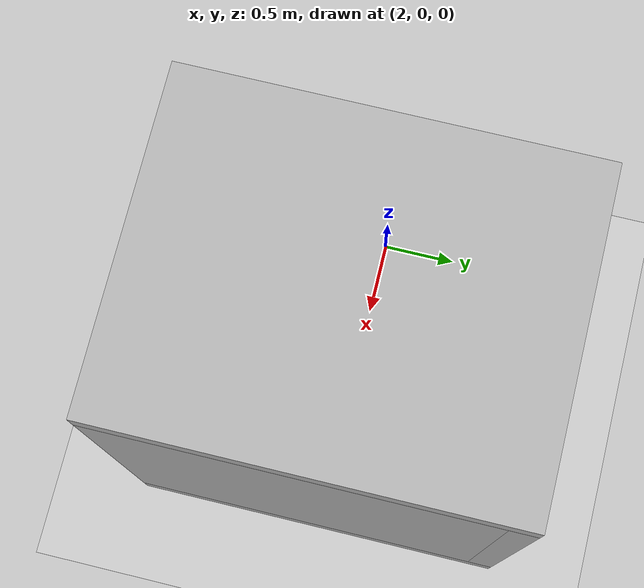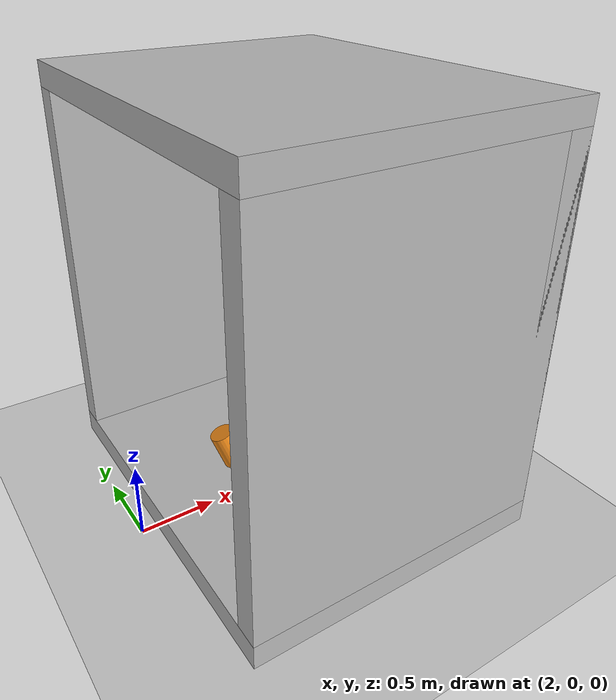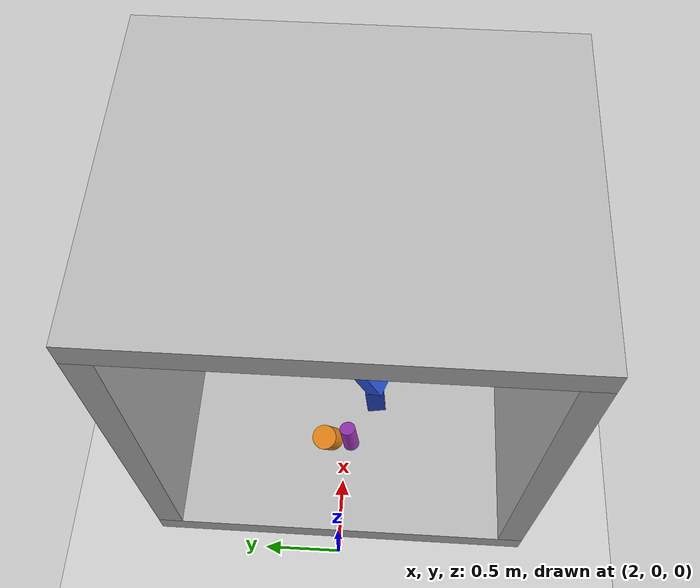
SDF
<sdf version="1.6">
 <world name="default">
  <light name="sun" type="directional">
   <pose>0 0 10 0 -0 0</pose>
   <diffuse>0.8 0.8 0.8 1</diffuse>
   <specular>0.1 0.1 0.1 1</specular>
   <attenuation>
    <range>1000</range>
    <constant>0.9</constant>
    <linear>0.01</linear>
    <quadratic>0.001</quadratic>
   </attenuation>
   <direction>-0.5 0.5 -1</direction>
  </light>
  <model name="ground_plane">
   <static>1</static>
   <link name="link">
    <collision name="collision">
     <geometry><plane><normal>0 0 1</normal><size>100 100</size></plane></geometry>
     <surface><friction><ode><mu>100</mu><mu2>50</mu2></ode></friction></surface>
    </collision>
    <visual name="visual">
     <cast_shadows>0</cast_shadows>
     <geometry><plane><normal>0 0 1</normal><size>100 100</size></plane></geometry>
     <material>
      <script><uri>file://media/materials/scripts/gazebo.material</uri><name>Gazebo/Grey</name></script>
     </material>
    </visual>
   </link>
  </model>
  <physics name="default_physics" default="0" type="ode">
   <real_time_update_rate>0</real_time_update_rate>
   <max_step_size>0.001</max_step_size>
   <real_time_factor>1</real_time_factor>
  </physics>
  <gravity>0 0 -9.8</gravity>
  <magnetic_field>6e-06 2.3e-05 -4.2e-05</magnetic_field>
  <atmosphere type="adiabatic"/>
  <scene><ambient>0.4 0.4 0.4 1</ambient><background>0.7 0.7 0.7 1</background><shadows>1</shadows></scene>
  <spherical_coordinates>
   <surface_model>EARTH_WGS84</surface_model>
   <latitude_deg>0</latitude_deg>
   <longitude_deg>0</longitude_deg>
   <elevation>0</elevation>
   <heading_deg>0</heading_deg>
  </spherical_coordinates>
  <model name="container">
   <link name="container">
    <inertial>
     <pose>0.22439 0 1.64098 0 -0 0</pose>
     <mass>205</mass>
     <inertia>
      <ixx>329.883</ixx>
      <ixy>1.59439e-15</ixy>
      <ixz>12.9249</ixz>
      <iyy>229.817</iyy>
      <iyz>1.16598e-14</iyz>
      <izz>267.609</izz>
     </inertia>
    </inertial>
    <collision name="container_back_collision">
     <pose>0.92 0 1.36 0 -0 0</pose>
     <geometry><box><size>0.16 2.45 2.4</size></box></geometry>
    </collision>
    <collision name="container_bottom_collision_1">
     <pose>0 0 0.08 0 -0 0</pose>
     <geometry><box><size>2 2.45 0.16</size></box></geometry>
    </collision>
    <collision name="container_left_collision_2">
     <pose>0 1.145 1.36 0 -0 0</pose>
     <geometry><box><size>2 0.16 2.4</size></box></geometry>
    </collision>
    <collision name="container_right_collision_3">
     <pose>0 -1.145 1.36 0 -0 0</pose>
     <geometry><box><size>2 0.16 2.4</size></box></geometry>
    </collision>
    <collision name="container_top_collision_4">
     <pose>0 0 2.64 0 -0 0</pose>
     <geometry><box><size>2 2.45 0.16</size></box></geometry>
    </collision>
    <visual name="container_back_visual">
     <pose>0.92 0 1.36 0 -0 0</pose>
     <geometry><box><size>0.16 2.45 2.4</size></box></geometry>
    </visual>
    <visual name="container_bottom_visual_1">
     <pose>0 0 0.08 0 -0 0</pose>
     <geometry><box><size>2 2.45 0.16</size></box></geometry>
    </visual>
    <visual name="container_left_visual_2">
     <pose>0 1.145 1.36 0 -0 0</pose>
     <geometry><box><size>2 0.16 2.4</size></box></geometry>
    </visual>
    <visual name="container_right_visual_3">
     <pose>0 -1.145 1.36 0 -0 0</pose>
     <geometry><box><size>2 0.16 2.4</size></box></geometry>
    </visual>
    <visual name="container_top_visual_4">
     <pose>0 0 2.64 0 -0 0</pose>
     <geometry><box><size>2 2.45 0.16</size></box></geometry>
    </visual>
   </link>
   <pose>3.10043 0.000461 -0 0 0 -0.000148</pose>
  </model>
  <model name="roblog-dhl-box-blue-simple-0-1632">
   <link name="link">
    <inertial>
     <mass>0.25</mass>
     <inertia>
      <ixx>0.00218083</ixx>
      <ixy>0</ixy>
      <ixz>0</ixz>
      <iyy>0.00473308</iyy>
      <iyz>0</iyz>
      <izz>0.00321375</izz>
     </inertia>
    </inertial>
    <collision name="link_collision"><geometry><box><size>0.372 0.126 0.298</size></box></geometry></collision>
    <visual name="link_visual">
     <geometry><box><size>0.372 0.126 0.298</size></box></geometry>
     <material>
      <script><name>Gazebo/Blue</name><uri>file://media/materials/scripts/gazebo.material</uri></script>
     </material>
    </visual>
   </link>
   <pose>3.16662 -0.181162 0.313777 -0.085364 -0.000266 0.114429</pose>
  </model>
  <model name="roblog-dhl-box-blue-simple-1-1633">
   <link name="link">
    <inertial>
     <mass>0.25</mass>
     <inertia>
      <ixx>0.00218083</ixx>
      <ixy>0</ixy>
      <ixz>0</ixz>
      <iyy>0.00473308</iyy>
      <iyz>0</iyz>
      <izz>0.00321375</izz>
     </inertia>
    </inertial>
    <collision name="link_collision"><geometry><box><size>0.372 0.126 0.298</size></box></geometry></collision>
    <visual name="link_visual">
     <geometry><box><size>0.372 0.126 0.298</size></box></geometry>
     <material>
      <script><name>Gazebo/Blue</name><uri>file://media/materials/scripts/gazebo.material</uri></script>
     </material>
    </visual>
   </link>
   <pose>3.15671 -0.183317 0.625237 -0.555353 -0.041888 -0.394315</pose>
  </model>
  <model name="roblog-vanish-detergent-simple-2-1634">
   <link name="link">
    <inertial>
     <mass>0.08</mass>
     <inertia>
      <ixx>0.000324987</ixx>
      <ixy>0</ixy>
      <ixz>0</ixz>
      <iyy>0.000324987</iyy>
      <iyz>0</iyz>
      <izz>0.00011664</izz>
     </inertia>
    </inertial>
    <collision name="link_collision">
     <geometry><cylinder><length>0.2</length><radius>0.054</radius></cylinder></geometry>
    </collision>
    <visual name="link_visual">
     <geometry><cylinder><length>0.2</length><radius>0.054</radius></cylinder></geometry>
     <material>
      <script><name>Gazebo/PurpleGlow</name><uri>file://media/materials/scripts/gazebo.material</uri></script>
     </material>
    </visual>
    <velocity_decay><linear>0.005</linear><angular>0.005</angular></velocity_decay>
   </link>
   <pose>2.73164 -0.031007 0.273972 -0.235293 -0.036543 -0.999565</pose>
  </model>
  <model name="roblog-maisels-barrel-simple-3-1635">
   <link name="link">
    <inertial>
     <mass>0.54</mass>
     <inertia>
      <ixx>0.00354312</ixx>
      <ixy>0</ixy>
      <ixz>0</ixz>
      <iyy>0.00354312</iyy>
      <iyz>0</iyz>
      <izz>0.00181548</izz>
     </inertia>
    </inertial>
    <collision name="link_collision">
     <geometry><cylinder><length>0.242</length><radius>0.082</radius></cylinder></geometry>
    </collision>
    <visual name="link_visual">
     <geometry><cylinder><length>0.242</length><radius>0.082</radius></cylinder></geometry>
     <material>
      <script><name>Gazebo/Orange</name><uri>file://media/materials/scripts/gazebo.material</uri></script>
     </material>
    </visual>
    <velocity_decay><linear>0.005</linear><angular>0.005</angular></velocity_decay>
   </link>
   <pose>2.70013 0.11457 0.302887 -0.164473 -0.348176 -0.05979</pose>
  </model>
 </world>
</sdf>
